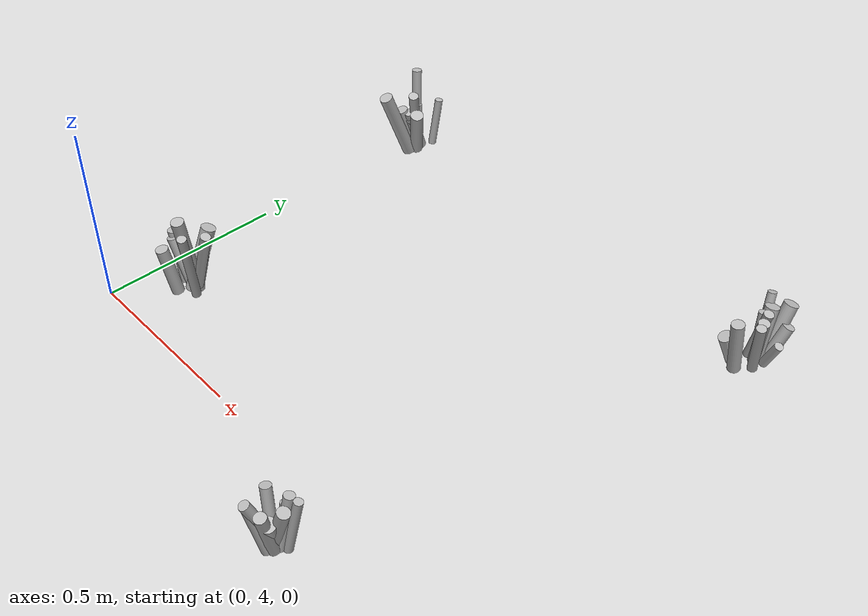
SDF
<sdf version="1.6">
 <world name="default">
  <model name="tussocks">
   <static>true</static>
   <link name="tuft8_0">
    <pose>1.2979 5.0263 0.0737 0 0.1655 5.3205</pose>
    <visual name="tuft8_0_v">
     <geometry><cylinder><radius>0.0129</radius><length>0.1603</length></cylinder></geometry>
     <material>
      <script>
       <uri>model://bushfire/materials/scripts</uri>
       <uri>model://bushfire/materials/textures</uri>
       <name>Bushfire/Foliage2</name>
      </script>
     </material>
    </visual>
   </link>
   <link name="tuft8_1">
    <pose>1.2327 5.0101 0.0407 0 0.3601 4.1577</pose>
    <visual name="tuft8_1_v">
     <geometry><cylinder><radius>0.0193</radius><length>0.0885</length></cylinder></geometry>
     <material>
      <script>
       <uri>model://bushfire/materials/scripts</uri>
       <uri>model://bushfire/materials/textures</uri>
       <name>Bushfire/Tussock</name>
      </script>
     </material>
    </visual>
   </link>
   <link name="tuft8_2">
    <pose>1.2522 5.1028 0.0490 0 0.3750 2.0169</pose>
    <visual name="tuft8_2_v">
     <geometry><cylinder><radius>0.0121</radius><length>0.1065</length></cylinder></geometry>
     <material>
      <script>
       <uri>model://bushfire/materials/scripts</uri>
       <uri>model://bushfire/materials/textures</uri>
       <name>Bushfire/Tussock</name>
      </script>
     </material>
    </visual>
   </link>
   <link name="tuft8_3">
    <pose>1.2981 5.1235 0.0412 0 0.4163 1.0828</pose>
    <visual name="tuft8_3_v">
     <geometry><cylinder><radius>0.0167</radius><length>0.0895</length></cylinder></geometry>
     <material>
      <script>
       <uri>model://bushfire/materials/scripts</uri>
       <uri>model://bushfire/materials/textures</uri>
       <name>Bushfire/Tussock</name>
      </script>
     </material>
    </visual>
   </link>
   <link name="tuft8_4">
    <pose>1.2671 5.0719 0.0663 0 0.1309 1.9858</pose>
    <visual name="tuft8_4_v">
     <geometry><cylinder><radius>0.0114</radius><length>0.1442</length></cylinder></geometry>
     <material>
      <script>
       <uri>model://bushfire/materials/scripts</uri>
       <uri>model://bushfire/materials/textures</uri>
       <name>Bushfire/Tussock</name>
      </script>
     </material>
    </visual>
   </link>
   <link name="tuft8_5">
    <pose>1.2479 5.1221 0.0729 0 0.3316 1.9390</pose>
    <visual name="tuft8_5_v">
     <geometry><cylinder><radius>0.0120</radius><length>0.1586</length></cylinder></geometry>
     <material>
      <script>
       <uri>model://bushfire/materials/scripts</uri>
       <uri>model://bushfire/materials/textures</uri>
       <name>Bushfire/Foliage2</name>
      </script>
     </material>
    </visual>
   </link>
   <link name="tuft8_6">
    <pose>1.2644 5.1024 0.0637 0 0.2743 1.6964</pose>
    <visual name="tuft8_6_v">
     <geometry><cylinder><radius>0.0188</radius><length>0.1385</length></cylinder></geometry>
     <material>
      <script>
       <uri>model://bushfire/materials/scripts</uri>
       <uri>model://bushfire/materials/textures</uri>
       <name>Bushfire/Tussock</name>
      </script>
     </material>
    </visual>
   </link>
   <link name="tuft8_7">
    <pose>1.2699 5.0682 0.0747 0 0.2084 6.2825</pose>
    <visual name="tuft8_7_v">
     <geometry><cylinder><radius>0.0133</radius><length>0.1623</length></cylinder></geometry>
     <material>
      <script>
       <uri>model://bushfire/materials/scripts</uri>
       <uri>model://bushfire/materials/textures</uri>
       <name>Bushfire/Tussock</name>
      </script>
     </material>
    </visual>
   </link>
   <link name="tuft8_8">
    <pose>1.2874 5.0474 0.0743 0 0.2186 5.4440</pose>
    <visual name="tuft8_8_v">
     <geometry><cylinder><radius>0.0146</radius><length>0.1616</length></cylinder></geometry>
     <material>
      <script>
       <uri>model://bushfire/materials/scripts</uri>
       <uri>model://bushfire/materials/textures</uri>
       <name>Bushfire/Foliage2</name>
      </script>
     </material>
    </visual>
   </link>
   <link name="tuft8_9">
    <pose>1.3171 5.0654 0.0411 0 0.3879 6.2243</pose>
    <visual name="tuft8_9_v">
     <geometry><cylinder><radius>0.0117</radius><length>0.0893</length></cylinder></geometry>
     <material>
      <script>
       <uri>model://bushfire/materials/scripts</uri>
       <uri>model://bushfire/materials/textures</uri>
       <name>Bushfire/Foliage2</name>
      </script>
     </material>
    </visual>
   </link>
   <link name="tuft8_10">
    <pose>1.2586 4.9958 0.0722 0 0.1025 4.5733</pose>
    <visual name="tuft8_10_v">
     <geometry><cylinder><radius>0.0171</radius><length>0.1569</length></cylinder></geometry>
     <material>
      <script>
       <uri>model://bushfire/materials/scripts</uri>
       <uri>model://bushfire/materials/textures</uri>
       <name>Bushfire/Foliage2</name>
      </script>
     </material>
    </visual>
   </link>
   <link name="tuft8_11">
    <pose>1.2805 5.1421 0.0631 0 0.3845 1.4127</pose>
    <visual name="tuft8_11_v">
     <geometry><cylinder><radius>0.0197</radius><length>0.1372</length></cylinder></geometry>
     <material>
      <script>
       <uri>model://bushfire/materials/scripts</uri>
       <uri>model://bushfire/materials/textures</uri>
       <name>Bushfire/Tussock</name>
      </script>
     </material>
    </visual>
   </link>
   <link name="tuft11_1">
    <pose>0.0487 5.0932 0.0673 0 0.1662 1.3447</pose>
    <visual name="tuft11_1_v">
     <geometry><cylinder><radius>0.0113</radius><length>0.1463</length></cylinder></geometry>
     <material>
      <script>
       <uri>model://bushfire/materials/scripts</uri>
       <uri>model://bushfire/materials/textures</uri>
       <name>Bushfire/Tussock</name>
      </script>
     </material>
    </visual>
   </link>
   <link name="tuft11_2">
    <pose>0.0258 4.9660 0.1031 0 0.3381 4.5862</pose>
    <visual name="tuft11_2_v">
     <geometry><cylinder><radius>0.0188</radius><length>0.2241</length></cylinder></geometry>
     <material>
      <script>
       <uri>model://bushfire/materials/scripts</uri>
       <uri>model://bushfire/materials/textures</uri>
       <name>Bushfire/Foliage2</name>
      </script>
     </material>
    </visual>
   </link>
   <link name="tuft11_3">
    <pose>0.0239 5.0096 0.0669 0 0.2971 4.2281</pose>
    <visual name="tuft11_3_v">
     <geometry><cylinder><radius>0.0182</radius><length>0.1453</length></cylinder></geometry>
     <material>
      <script>
       <uri>model://bushfire/materials/scripts</uri>
       <uri>model://bushfire/materials/textures</uri>
       <name>Bushfire/Foliage2</name>
      </script>
     </material>
    </visual>
   </link>
   <link name="tuft11_4">
    <pose>0.0589 5.0099 0.0735 0 0.3380 5.6543</pose>
    <visual name="tuft11_4_v">
     <geometry><cylinder><radius>0.0188</radius><length>0.1597</length></cylinder></geometry>
     <material>
      <script>
       <uri>model://bushfire/materials/scripts</uri>
       <uri>model://bushfire/materials/textures</uri>
       <name>Bushfire/Foliage2</name>
      </script>
     </material>
    </visual>
   </link>
   <link name="tuft11_6">
    <pose>0.0363 5.0254 0.0998 0 0.3244 5.4576</pose>
    <visual name="tuft11_6_v">
     <geometry><cylinder><radius>0.0141</radius><length>0.2169</length></cylinder></geometry>
     <material>
      <script>
       <uri>model://bushfire/materials/scripts</uri>
       <uri>model://bushfire/materials/textures</uri>
       <name>Bushfire/Tussock</name>
      </script>
     </material>
    </visual>
   </link>
   <link name="tuft11_7">
    <pose>0.0338 5.0256 0.0579 0 0.3096 4.7665</pose>
    <visual name="tuft11_7_v">
     <geometry><cylinder><radius>0.0176</radius><length>0.1258</length></cylinder></geometry>
     <material>
      <script>
       <uri>model://bushfire/materials/scripts</uri>
       <uri>model://bushfire/materials/textures</uri>
       <name>Bushfire/Tussock</name>
      </script>
     </material>
    </visual>
   </link>
   <link name="tuft11_8">
    <pose>0.0346 5.0160 0.0644 0 0.1941 4.7871</pose>
    <visual name="tuft11_8_v">
     <geometry><cylinder><radius>0.0150</radius><length>0.1400</length></cylinder></geometry>
     <material>
      <script>
       <uri>model://bushfire/materials/scripts</uri>
       <uri>model://bushfire/materials/textures</uri>
       <name>Bushfire/Foliage2</name>
      </script>
     </material>
    </visual>
   </link>
   <link name="tuft11_9">
    <pose>0.0272 5.0360 0.0629 0 0.3002 2.2711</pose>
    <visual name="tuft11_9_v">
     <geometry><cylinder><radius>0.0151</radius><length>0.1368</length></cylinder></geometry>
     <material>
      <script>
       <uri>model://bushfire/materials/scripts</uri>
       <uri>model://bushfire/materials/textures</uri>
       <name>Bushfire/Foliage2</name>
      </script>
     </material>
    </visual>
   </link>
   <link name="tuft11_11">
    <pose>0.0041 5.0591 0.1102 0 0.1464 2.3339</pose>
    <visual name="tuft11_11_v">
     <geometry><cylinder><radius>0.0142</radius><length>0.2395</length></cylinder></geometry>
     <material>
      <script>
       <uri>model://bushfire/materials/scripts</uri>
       <uri>model://bushfire/materials/textures</uri>
       <name>Bushfire/Foliage2</name>
      </script>
     </material>
    </visual>
   </link>
   <link name="tuft84_0">
    <pose>0.9403 3.8182 0.0833 0 0.3757 4.4002</pose>
    <visual name="tuft84_0_v">
     <geometry><cylinder><radius>0.0133</radius><length>0.1810</length></cylinder></geometry>
     <material>
      <script>
       <uri>model://bushfire/materials/scripts</uri>
       <uri>model://bushfire/materials/textures</uri>
       <name>Bushfire/Tussock</name>
      </script>
     </material>
    </visual>
   </link>
   <link name="tuft84_1">
    <pose>0.9625 3.8394 0.0734 0 0.3260 0.1853</pose>
    <visual name="tuft84_1_v">
     <geometry><cylinder><radius>0.0159</radius><length>0.1596</length></cylinder></geometry>
     <material>
      <script>
       <uri>model://bushfire/materials/scripts</uri>
       <uri>model://bushfire/materials/textures</uri>
       <name>Bushfire/Foliage2</name>
      </script>
     </material>
    </visual>
   </link>
   <link name="tuft84_2">
    <pose>0.9475 3.8348 0.0547 0 0.4106 5.4487</pose>
    <visual name="tuft84_2_v">
     <geometry><cylinder><radius>0.0191</radius><length>0.1189</length></cylinder></geometry>
     <material>
      <script>
       <uri>model://bushfire/materials/scripts</uri>
       <uri>model://bushfire/materials/textures</uri>
       <name>Bushfire/Foliage2</name>
      </script>
     </material>
    </visual>
   </link>
   <link name="tuft84_3">
    <pose>0.9143 3.8533 0.0718 0 0.1754 2.6505</pose>
    <visual name="tuft84_3_v">
     <geometry><cylinder><radius>0.0140</radius><length>0.1560</length></cylinder></geometry>
     <material>
      <script>
       <uri>model://bushfire/materials/scripts</uri>
       <uri>model://bushfire/materials/textures</uri>
       <name>Bushfire/Tussock</name>
      </script>
     </material>
    </visual>
   </link>
   <link name="tuft84_4">
    <pose>0.9338 3.8787 0.0471 0 0.1317 1.8538</pose>
    <visual name="tuft84_4_v">
     <geometry><cylinder><radius>0.0124</radius><length>0.1023</length></cylinder></geometry>
     <material>
      <script>
       <uri>model://bushfire/materials/scripts</uri>
       <uri>model://bushfire/materials/textures</uri>
       <name>Bushfire/Foliage2</name>
      </script>
     </material>
    </visual>
   </link>
   <link name="tuft84_5">
    <pose>0.9789 3.8689 0.0765 0 0.2066 0.7824</pose>
    <visual name="tuft84_5_v">
     <geometry><cylinder><radius>0.0114</radius><length>0.1663</length></cylinder></geometry>
     <material>
      <script>
       <uri>model://bushfire/materials/scripts</uri>
       <uri>model://bushfire/materials/textures</uri>
       <name>Bushfire/Tussock</name>
      </script>
     </material>
    </visual>
   </link>
   <link name="tuft84_6">
    <pose>0.9544 3.8177 0.0690 0 0.2241 5.1303</pose>
    <visual name="tuft84_6_v">
     <geometry><cylinder><radius>0.0153</radius><length>0.1501</length></cylinder></geometry>
     <material>
      <script>
       <uri>model://bushfire/materials/scripts</uri>
       <uri>model://bushfire/materials/textures</uri>
       <name>Bushfire/Foliage2</name>
      </script>
     </material>
    </visual>
   </link>
   <link name="tuft84_7">
    <pose>0.9593 3.8613 0.0780 0 0.1917 1.0849</pose>
    <visual name="tuft84_7_v">
     <geometry><cylinder><radius>0.0135</radius><length>0.1696</length></cylinder></geometry>
     <material>
      <script>
       <uri>model://bushfire/materials/scripts</uri>
       <uri>model://bushfire/materials/textures</uri>
       <name>Bushfire/Foliage2</name>
      </script>
     </material>
    </visual>
   </link>
   <link name="tuft84_8">
    <pose>0.9328 3.8073 0.0720 0 0.1925 4.2825</pose>
    <visual name="tuft84_8_v">
     <geometry><cylinder><radius>0.0137</radius><length>0.1566</length></cylinder></geometry>
     <material>
      <script>
       <uri>model://bushfire/materials/scripts</uri>
       <uri>model://bushfire/materials/textures</uri>
       <name>Bushfire/Tussock</name>
      </script>
     </material>
    </visual>
   </link>
   <link name="tuft131_0">
    <pose>0.1630 4.1891 0.1027 0 0.3256 0.0813</pose>
    <visual name="tuft131_0_v">
     <geometry><cylinder><radius>0.0135</radius><length>0.2234</length></cylinder></geometry>
     <material>
      <script>
       <uri>model://bushfire/materials/scripts</uri>
       <uri>model://bushfire/materials/textures</uri>
       <name>Bushfire/Foliage2</name>
      </script>
     </material>
    </visual>
   </link>
   <link name="tuft131_1">
    <pose>0.0912 4.1769 0.0689 0 0.3245 3.3959</pose>
    <visual name="tuft131_1_v">
     <geometry><cylinder><radius>0.0183</radius><length>0.1498</length></cylinder></geometry>
     <material>
      <script>
       <uri>model://bushfire/materials/scripts</uri>
       <uri>model://bushfire/materials/textures</uri>
       <name>Bushfire/Foliage2</name>
      </script>
     </material>
    </visual>
   </link>
   <link name="tuft131_2">
    <pose>0.1331 4.2036 0.0905 0 0.3300 1.2106</pose>
    <visual name="tuft131_2_v">
     <geometry><cylinder><radius>0.0197</radius><length>0.1968</length></cylinder></geometry>
     <material>
      <script>
       <uri>model://bushfire/materials/scripts</uri>
       <uri>model://bushfire/materials/textures</uri>
       <name>Bushfire/Tussock</name>
      </script>
     </material>
    </visual>
   </link>
   <link name="tuft131_3">
    <pose>0.1314 4.1703 0.1156 0 0.1474 5.0176</pose>
    <visual name="tuft131_3_v">
     <geometry><cylinder><radius>0.0173</radius><length>0.2513</length></cylinder></geometry>
     <material>
      <script>
       <uri>model://bushfire/materials/scripts</uri>
       <uri>model://bushfire/materials/textures</uri>
       <name>Bushfire/Tussock</name>
      </script>
     </material>
    </visual>
   </link>
   <link name="tuft131_4">
    <pose>0.1666 4.1500 0.1108 0 0.2434 5.5511</pose>
    <visual name="tuft131_4_v">
     <geometry><cylinder><radius>0.0125</radius><length>0.2409</length></cylinder></geometry>
     <material>
      <script>
       <uri>model://bushfire/materials/scripts</uri>
       <uri>model://bushfire/materials/textures</uri>
       <name>Bushfire/Tussock</name>
      </script>
     </material>
    </visual>
   </link>
   <link name="tuft131_5">
    <pose>0.1322 4.2072 0.0645 0 0.2642 1.3073</pose>
    <visual name="tuft131_5_v">
     <geometry><cylinder><radius>0.0128</radius><length>0.1401</length></cylinder></geometry>
     <material>
      <script>
       <uri>model://bushfire/materials/scripts</uri>
       <uri>model://bushfire/materials/textures</uri>
       <name>Bushfire/Foliage2</name>
      </script>
     </material>
    </visual>
   </link>
   <link name="tuft131_6">
    <pose>0.0672 4.1811 0.0728 0 0.1533 3.2255</pose>
    <visual name="tuft131_6_v">
     <geometry><cylinder><radius>0.0159</radius><length>0.1582</length></cylinder></geometry>
     <material>
      <script>
       <uri>model://bushfire/materials/scripts</uri>
       <uri>model://bushfire/materials/textures</uri>
       <name>Bushfire/Tussock</name>
      </script>
     </material>
    </visual>
   </link>
   <link name="tuft131_7">
    <pose>0.0970 4.1302 0.0680 0 0.1562 4.2270</pose>
    <visual name="tuft131_7_v">
     <geometry><cylinder><radius>0.0170</radius><length>0.1479</length></cylinder></geometry>
     <material>
      <script>
       <uri>model://bushfire/materials/scripts</uri>
       <uri>model://bushfire/materials/textures</uri>
       <name>Bushfire/Tussock</name>
      </script>
     </material>
    </visual>
   </link>
  </model>
 </world>
</sdf>
